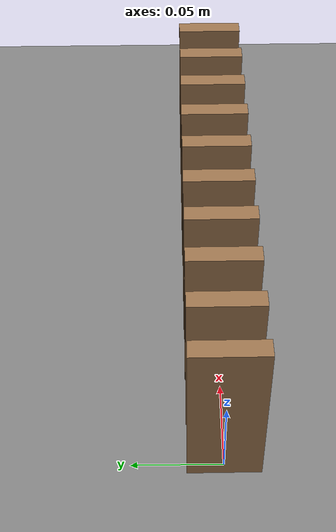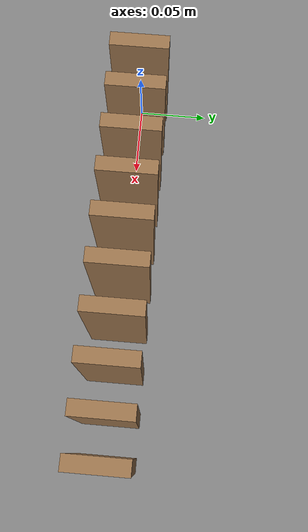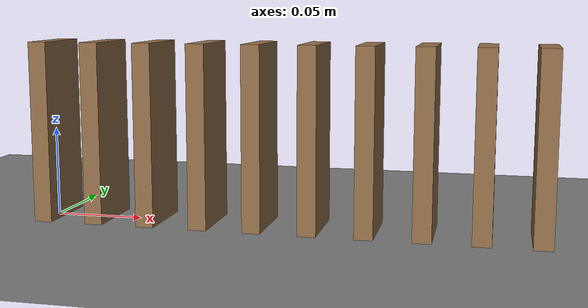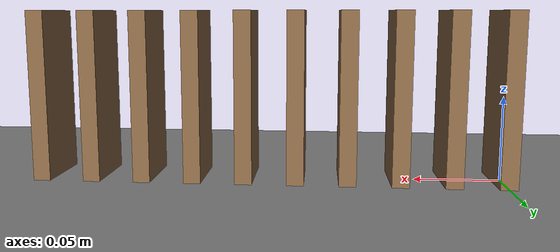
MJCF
<mujoco model="ten_falling_dominoes">
  <compiler angle="radian"/>
  <option timestep="0.002"/>
  <worldbody>
    <geom name="floor" type="plane" size="3 3 0.1" friction="0.9 0.001 0.0001"/>
    <body name="domino1" pos="0 0 0.05">
      <freejoint/>
      <geom name="domino1" type="box" pos="0 0 0" size="0.005 0.02 0.05" mass="0.06" friction="0.9 0.001 0.0001" solref="0.01 1" rgba="0.6 0.45 0.3 1"/>
    </body>
    <body name="domino2" pos="0.03 0 0.05">
      <freejoint/>
      <geom name="domino2" type="box" pos="0 0 0" size="0.005 0.02 0.05" mass="0.06" friction="0.9 0.001 0.0001" solref="0.01 1" rgba="0.6 0.45 0.3 1"/>
    </body>
    <body name="domino3" pos="0.06 0 0.05">
      <freejoint/>
      <geom name="domino3" type="box" pos="0 0 0" size="0.005 0.02 0.05" mass="0.06" friction="0.9 0.001 0.0001" solref="0.01 1" rgba="0.6 0.45 0.3 1"/>
    </body>
    <body name="domino4" pos="0.09 0 0.05">
      <freejoint/>
      <geom name="domino4" type="box" pos="0 0 0" size="0.005 0.02 0.05" mass="0.06" friction="0.9 0.001 0.0001" solref="0.01 1" rgba="0.6 0.45 0.3 1"/>
    </body>
    <body name="domino5" pos="0.12 0 0.05">
      <freejoint/>
      <geom name="domino5" type="box" pos="0 0 0" size="0.005 0.02 0.05" mass="0.06" friction="0.9 0.001 0.0001" solref="0.01 1" rgba="0.6 0.45 0.3 1"/>
    </body>
    <body name="domino6" pos="0.15 0 0.05">
      <freejoint/>
      <geom name="domino6" type="box" pos="0 0 0" size="0.005 0.02 0.05" mass="0.06" friction="0.9 0.001 0.0001" solref="0.01 1" rgba="0.6 0.45 0.3 1"/>
    </body>
    <body name="domino7" pos="0.18 0 0.05">
      <freejoint/>
      <geom name="domino7" type="box" pos="0 0 0" size="0.005 0.02 0.05" mass="0.06" friction="0.9 0.001 0.0001" solref="0.01 1" rgba="0.6 0.45 0.3 1"/>
    </body>
    <body name="domino8" pos="0.21 0 0.05">
      <freejoint/>
      <geom name="domino8" type="box" pos="0 0 0" size="0.005 0.02 0.05" mass="0.06" friction="0.9 0.001 0.0001" solref="0.01 1" rgba="0.6 0.45 0.3 1"/>
    </body>
    <body name="domino9" pos="0.24 0 0.05">
      <freejoint/>
      <geom name="domino9" type="box" pos="0 0 0" size="0.005 0.02 0.05" mass="0.06" friction="0.9 0.001 0.0001" solref="0.01 1" rgba="0.6 0.45 0.3 1"/>
    </body>
    <body name="domino10" pos="0.27 0 0.05">
      <freejoint/>
      <geom name="domino10" type="box" pos="0 0 0" size="0.005 0.02 0.05" mass="0.06" friction="0.9 0.001 0.0001" solref="0.01 1" rgba="0.6 0.45 0.3 1"/>
    </body>
  </worldbody>
  <keyframe>
    <key name="start" qpos="0 0 0.05 1 0 0 0 0.03 0 0.05 1 0 0 0 0.06 0 0.05 1 0 0 0 0.09 0 0.05 1 0 0 0 0.12 0 0.05 1 0 0 0 0.15 0 0.05 1 0 0 0 0.18 0 0.05 1 0 0 0 0.21 0 0.05 1 0 0 0 0.24 0 0.05 1 0 0 0 0.27 0 0.05 1 0 0 0" qvel="0 0 0 0 10 0 0 0 0 0 0 0 0 0 0 0 0 0 0 0 0 0 0 0 0 0 0 0 0 0 0 0 0 0 0 0 0 0 0 0 0 0 0 0 0 0 0 0 0 0 0 0 0 0 0 0 0 0 0 0"/>
  </keyframe>
</mujoco>
